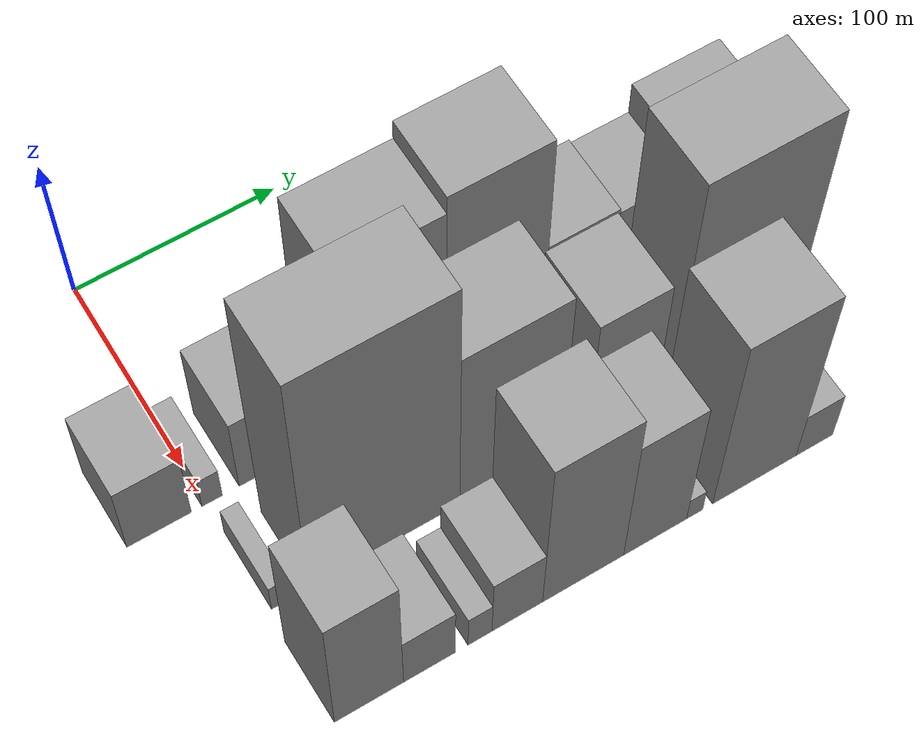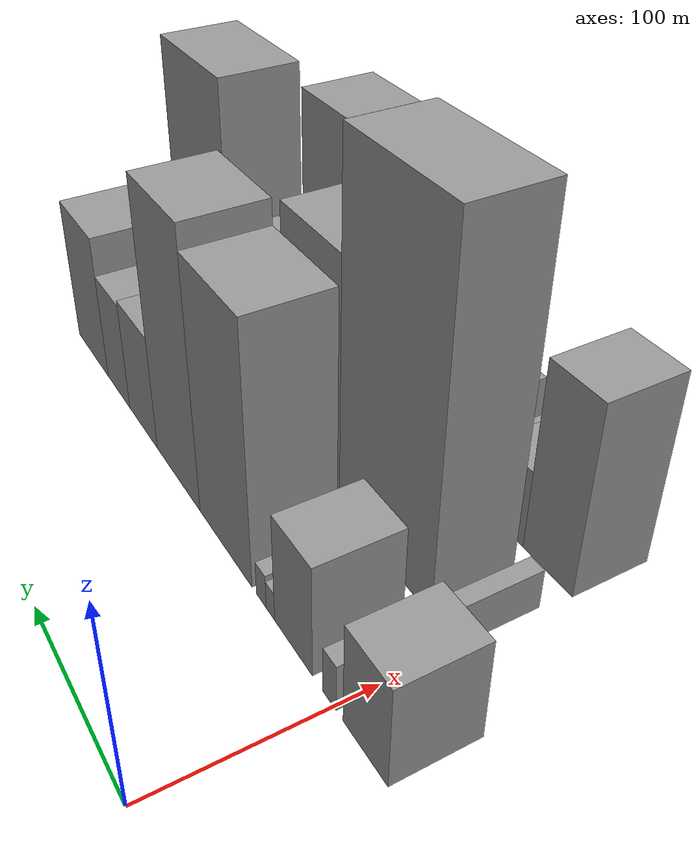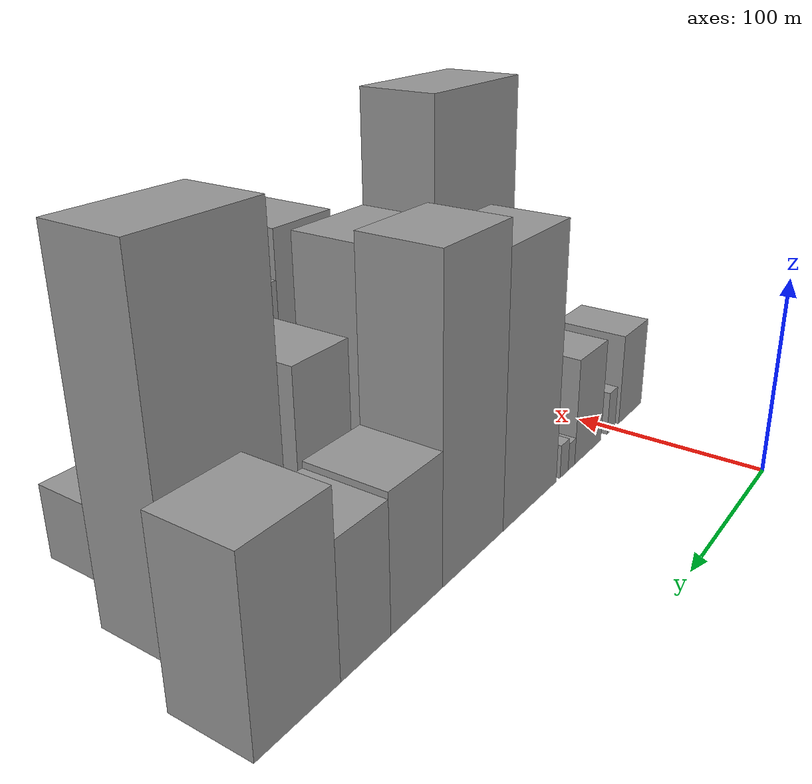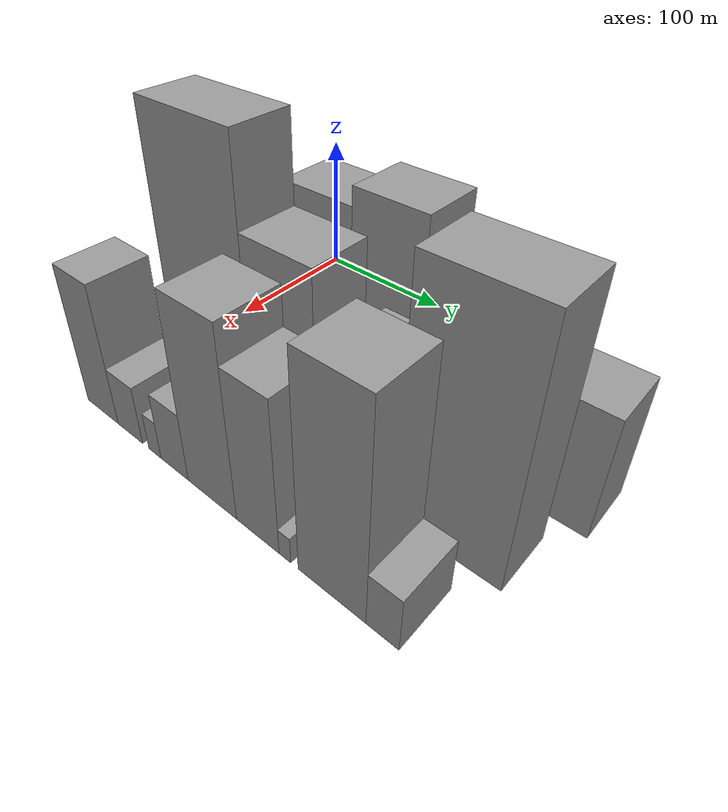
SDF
<sdf version="1.6">
 <world name="default">
  <model name="building_18">
   <static>1</static>
   <pose>100.0000 -22.1608 0 0.000000 0.000000 0.000000</pose>
   <link name="link">
    <pose>0 0 25.50 0 0 0</pose>
    <collision name="collision"><geometry><box><size>40.0000 30.3531 51.0000</size></box></geometry></collision>
    <visual name="visual">
     <cast_shadows>0</cast_shadows>
     <geometry><box><size>40.0000 30.3531 51.0000</size></box></geometry>
     <material>
      <script>
       <uri>model://grey_wall/materials/scripts</uri>
       <uri>model://grey_wall/materials/textures</uri>
       <name>vrc/grey_wall</name>
      </script>
     </material>
    </visual>
   </link>
  </model>
  <model name="building_19">
   <static>1</static>
   <pose>100.0000 2.8807 0 0.000000 0.000000 0.000000</pose>
   <link name="link">
    <pose>0 0 12.00 0 0 0</pose>
    <collision name="collision"><geometry><box><size>40.0000 9.7299 24.0000</size></box></geometry></collision>
    <visual name="visual">
     <cast_shadows>0</cast_shadows>
     <geometry><box><size>40.0000 9.7299 24.0000</size></box></geometry>
     <material>
      <script>
       <uri>model://grey_wall/materials/scripts</uri>
       <uri>model://grey_wall/materials/textures</uri>
       <name>vrc/grey_wall</name>
      </script>
     </material>
    </visual>
   </link>
  </model>
  <model name="building_20">
   <static>1</static>
   <pose>100.0000 31.1038 0 0.000000 0.000000 0.000000</pose>
   <link name="link">
    <pose>0 0 28.50 0 0 0</pose>
    <collision name="collision"><geometry><box><size>40.0000 30.7164 57.0000</size></box></geometry></collision>
    <visual name="visual">
     <cast_shadows>0</cast_shadows>
     <geometry><box><size>40.0000 30.7164 57.0000</size></box></geometry>
     <material>
      <script>
       <uri>model://grey_wall/materials/scripts</uri>
       <uri>model://grey_wall/materials/textures</uri>
       <name>vrc/grey_wall</name>
      </script>
     </material>
    </visual>
   </link>
  </model>
  <model name="building_21">
   <static>1</static>
   <pose>100.0000 50.1146 0 0.000000 0.000000 0.000000</pose>
   <link name="link">
    <pose>0 0 7.50 0 0 0</pose>
    <collision name="collision"><geometry><box><size>40.0000 7.3051 15.0000</size></box></geometry></collision>
    <visual name="visual">
     <cast_shadows>0</cast_shadows>
     <geometry><box><size>40.0000 7.3051 15.0000</size></box></geometry>
     <material>
      <script>
       <uri>model://grey_wall/materials/scripts</uri>
       <uri>model://grey_wall/materials/textures</uri>
       <name>vrc/grey_wall</name>
      </script>
     </material>
    </visual>
   </link>
  </model>
  <model name="building_22">
   <static>1</static>
   <pose>100.0000 58.1221 0 0.000000 0.000000 0.000000</pose>
   <link name="link">
    <pose>0 0 9.00 0 0 0</pose>
    <collision name="collision"><geometry><box><size>40.0000 8.7098 18.0000</size></box></geometry></collision>
    <visual name="visual">
     <cast_shadows>0</cast_shadows>
     <geometry><box><size>40.0000 8.7098 18.0000</size></box></geometry>
     <material>
      <script>
       <uri>model://grey_wall/materials/scripts</uri>
       <uri>model://grey_wall/materials/textures</uri>
       <name>vrc/grey_wall</name>
      </script>
     </material>
    </visual>
   </link>
  </model>
  <model name="building_23">
   <static>1</static>
   <pose>100.0000 92.1150 0 0.000000 0.000000 0.000000</pose>
   <link name="link">
    <pose>0 0 66.00 0 0 0</pose>
    <collision name="collision"><geometry><box><size>40.0000 51.2761 132.0000</size></box></geometry></collision>
    <visual name="visual">
     <cast_shadows>0</cast_shadows>
     <geometry><box><size>40.0000 51.2761 132.0000</size></box></geometry>
     <material>
      <script>
       <uri>model://grey_wall/materials/scripts</uri>
       <uri>model://grey_wall/materials/textures</uri>
       <name>vrc/grey_wall</name>
      </script>
     </material>
    </visual>
   </link>
  </model>
  <model name="building_24">
   <static>1</static>
   <pose>100.0000 142.2321 0 0.000000 0.000000 0.000000</pose>
   <link name="link">
    <pose>0 0 72.00 0 0 0</pose>
    <collision name="collision"><geometry><box><size>40.0000 48.9580 144.0000</size></box></geometry></collision>
    <visual name="visual">
     <cast_shadows>0</cast_shadows>
     <geometry><box><size>40.0000 48.9580 144.0000</size></box></geometry>
     <material>
      <script>
       <uri>model://grey_wall/materials/scripts</uri>
       <uri>model://grey_wall/materials/textures</uri>
       <name>vrc/grey_wall</name>
      </script>
     </material>
    </visual>
   </link>
  </model>
  <model name="building_25">
   <static>1</static>
   <pose>100.0000 184.4532 0 0.000000 0.000000 0.000000</pose>
   <link name="link">
    <pose>0 0 31.50 0 0 0</pose>
    <collision name="collision"><geometry><box><size>40.0000 35.4842 63.0000</size></box></geometry></collision>
    <visual name="visual">
     <cast_shadows>0</cast_shadows>
     <geometry><box><size>40.0000 35.4842 63.0000</size></box></geometry>
     <material>
      <script>
       <uri>model://grey_wall/materials/scripts</uri>
       <uri>model://grey_wall/materials/textures</uri>
       <name>vrc/grey_wall</name>
      </script>
     </material>
    </visual>
   </link>
  </model>
  <model name="building_26">
   <static>1</static>
   <pose>100.0000 217.3462 0 0.000000 0.000000 0.000000</pose>
   <link name="link">
    <pose>0 0 30.00 0 0 0</pose>
    <collision name="collision"><geometry><box><size>40.0000 30.3018 60.0000</size></box></geometry></collision>
    <visual name="visual">
     <cast_shadows>0</cast_shadows>
     <geometry><box><size>40.0000 30.3018 60.0000</size></box></geometry>
     <material>
      <script>
       <uri>model://grey_wall/materials/scripts</uri>
       <uri>model://grey_wall/materials/textures</uri>
       <name>vrc/grey_wall</name>
      </script>
     </material>
    </visual>
   </link>
  </model>
  <model name="building_27">
   <static>1</static>
   <pose>100.0000 254.6046 0 0.000000 0.000000 0.000000</pose>
   <link name="link">
    <pose>0 0 40.50 0 0 0</pose>
    <collision name="collision"><geometry><box><size>40.0000 44.2150 81.0000</size></box></geometry></collision>
    <visual name="visual">
     <cast_shadows>0</cast_shadows>
     <geometry><box><size>40.0000 44.2150 81.0000</size></box></geometry>
     <material>
      <script>
       <uri>model://grey_wall/materials/scripts</uri>
       <uri>model://grey_wall/materials/textures</uri>
       <name>vrc/grey_wall</name>
      </script>
     </material>
    </visual>
   </link>
  </model>
  <model name="building_53">
   <static>1</static>
   <pose>155.0000 4.5576 0 0.000000 0.000000 0.000000</pose>
   <link name="link">
    <pose>0 0 10.50 0 0 0</pose>
    <collision name="collision"><geometry><box><size>40.0000 8.5847 21.0000</size></box></geometry></collision>
    <visual name="visual">
     <cast_shadows>0</cast_shadows>
     <geometry><box><size>40.0000 8.5847 21.0000</size></box></geometry>
     <material>
      <script>
       <uri>model://grey_wall/materials/scripts</uri>
       <uri>model://grey_wall/materials/textures</uri>
       <name>vrc/grey_wall</name>
      </script>
     </material>
    </visual>
   </link>
  </model>
  <model name="building_54">
   <static>1</static>
   <pose>155.0000 54.0889 0 0.000000 0.000000 0.000000</pose>
   <link name="link">
    <pose>0 0 91.50 0 0 0</pose>
    <collision name="collision"><geometry><box><size>40.0000 72.4778 183.0000</size></box></geometry></collision>
    <visual name="visual">
     <cast_shadows>0</cast_shadows>
     <geometry><box><size>40.0000 72.4778 183.0000</size></box></geometry>
     <material>
      <script>
       <uri>model://grey_wall/materials/scripts</uri>
       <uri>model://grey_wall/materials/textures</uri>
       <name>vrc/grey_wall</name>
      </script>
     </material>
    </visual>
   </link>
  </model>
  <model name="building_55">
   <static>1</static>
   <pose>155.0000 115.5524 0 0.000000 0.000000 0.000000</pose>
   <link name="link">
    <pose>0 0 64.50 0 0 0</pose>
    <collision name="collision"><geometry><box><size>40.0000 50.4492 129.0000</size></box></geometry></collision>
    <visual name="visual">
     <cast_shadows>0</cast_shadows>
     <geometry><box><size>40.0000 50.4492 129.0000</size></box></geometry>
     <material>
      <script>
       <uri>model://grey_wall/materials/scripts</uri>
       <uri>model://grey_wall/materials/textures</uri>
       <name>vrc/grey_wall</name>
      </script>
     </material>
    </visual>
   </link>
  </model>
  <model name="building_56">
   <static>1</static>
   <pose>155.0000 147.4240 0 0.000000 0.000000 0.000000</pose>
   <link name="link">
    <pose>0 0 13.50 0 0 0</pose>
    <collision name="collision"><geometry><box><size>40.0000 13.2939 27.0000</size></box></geometry></collision>
    <visual name="visual">
     <cast_shadows>0</cast_shadows>
     <geometry><box><size>40.0000 13.2939 27.0000</size></box></geometry>
     <material>
      <script>
       <uri>model://grey_wall/materials/scripts</uri>
       <uri>model://grey_wall/materials/textures</uri>
       <name>vrc/grey_wall</name>
      </script>
     </material>
    </visual>
   </link>
  </model>
  <model name="building_57">
   <static>1</static>
   <pose>155.0000 171.3424 0 0.000000 0.000000 0.000000</pose>
   <link name="link">
    <pose>0 0 46.50 0 0 0</pose>
    <collision name="collision"><geometry><box><size>40.0000 34.5428 93.0000</size></box></geometry></collision>
    <visual name="visual">
     <cast_shadows>0</cast_shadows>
     <geometry><box><size>40.0000 34.5428 93.0000</size></box></geometry>
     <material>
      <script>
       <uri>model://grey_wall/materials/scripts</uri>
       <uri>model://grey_wall/materials/textures</uri>
       <name>vrc/grey_wall</name>
      </script>
     </material>
    </visual>
   </link>
  </model>
  <model name="building_58">
   <static>1</static>
   <pose>155.0000 228.3046 0 0.000000 0.000000 0.000000</pose>
   <link name="link">
    <pose>0 0 81.00 0 0 0</pose>
    <collision name="collision"><geometry><box><size>40.0000 63.3817 162.0000</size></box></geometry></collision>
    <visual name="visual">
     <cast_shadows>0</cast_shadows>
     <geometry><box><size>40.0000 63.3817 162.0000</size></box></geometry>
     <material>
      <script>
       <uri>model://grey_wall/materials/scripts</uri>
       <uri>model://grey_wall/materials/textures</uri>
       <name>vrc/grey_wall</name>
      </script>
     </material>
    </visual>
   </link>
  </model>
  <model name="building_83">
   <static>1</static>
   <pose>210.0000 13.9930 0 0.000000 0.000000 0.000000</pose>
   <link name="link">
    <pose>0 0 49.50 0 0 0</pose>
    <collision name="collision"><geometry><box><size>40.0000 32.1317 99.0000</size></box></geometry></collision>
    <visual name="visual">
     <cast_shadows>0</cast_shadows>
     <geometry><box><size>40.0000 32.1317 99.0000</size></box></geometry>
     <material>
      <script>
       <uri>model://grey_wall/materials/scripts</uri>
       <uri>model://grey_wall/materials/textures</uri>
       <name>vrc/grey_wall</name>
      </script>
     </material>
    </visual>
   </link>
  </model>
  <model name="building_84">
   <static>1</static>
   <pose>210.0000 42.2675 0 0.000000 0.000000 0.000000</pose>
   <link name="link">
    <pose>0 0 21.00 0 0 0</pose>
    <collision name="collision"><geometry><box><size>40.0000 24.4173 42.0000</size></box></geometry></collision>
    <visual name="visual">
     <cast_shadows>0</cast_shadows>
     <geometry><box><size>40.0000 24.4173 42.0000</size></box></geometry>
     <material>
      <script>
       <uri>model://grey_wall/materials/scripts</uri>
       <uri>model://grey_wall/materials/textures</uri>
       <name>vrc/grey_wall</name>
      </script>
     </material>
    </visual>
   </link>
  </model>
  <model name="building_85">
   <static>1</static>
   <pose>210.0000 66.1847 0 0.000000 0.000000 0.000000</pose>
   <link name="link">
    <pose>0 0 13.50 0 0 0</pose>
    <collision name="collision"><geometry><box><size>40.0000 11.4173 27.0000</size></box></geometry></collision>
    <visual name="visual">
     <cast_shadows>0</cast_shadows>
     <geometry><box><size>40.0000 11.4173 27.0000</size></box></geometry>
     <material>
      <script>
       <uri>model://grey_wall/materials/scripts</uri>
       <uri>model://grey_wall/materials/textures</uri>
       <name>vrc/grey_wall</name>
      </script>
     </material>
    </visual>
   </link>
  </model>
  <model name="building_86">
   <static>1</static>
   <pose>210.0000 84.0470 0 0.000000 0.000000 0.000000</pose>
   <link name="link">
    <pose>0 0 24.00 0 0 0</pose>
    <collision name="collision"><geometry><box><size>40.0000 24.3071 48.0000</size></box></geometry></collision>
    <visual name="visual">
     <cast_shadows>0</cast_shadows>
     <geometry><box><size>40.0000 24.3071 48.0000</size></box></geometry>
     <material>
      <script>
       <uri>model://grey_wall/materials/scripts</uri>
       <uri>model://grey_wall/materials/textures</uri>
       <name>vrc/grey_wall</name>
      </script>
     </material>
    </visual>
   </link>
  </model>
  <model name="building_87">
   <static>1</static>
   <pose>210.0000 116.0348 0 0.000000 0.000000 0.000000</pose>
   <link name="link">
    <pose>0 0 63.00 0 0 0</pose>
    <collision name="collision"><geometry><box><size>40.0000 39.6685 126.0000</size></box></geometry></collision>
    <visual name="visual">
     <cast_shadows>0</cast_shadows>
     <geometry><box><size>40.0000 39.6685 126.0000</size></box></geometry>
     <material>
      <script>
       <uri>model://grey_wall/materials/scripts</uri>
       <uri>model://grey_wall/materials/textures</uri>
       <name>vrc/grey_wall</name>
      </script>
     </material>
    </visual>
   </link>
  </model>
  <model name="building_88">
   <static>1</static>
   <pose>210.0000 151.5116 0 0.000000 0.000000 0.000000</pose>
   <link name="link">
    <pose>0 0 51.00 0 0 0</pose>
    <collision name="collision"><geometry><box><size>40.0000 31.2851 102.0000</size></box></geometry></collision>
    <visual name="visual">
     <cast_shadows>0</cast_shadows>
     <geometry><box><size>40.0000 31.2851 102.0000</size></box></geometry>
     <material>
      <script>
       <uri>model://grey_wall/materials/scripts</uri>
       <uri>model://grey_wall/materials/textures</uri>
       <name>vrc/grey_wall</name>
      </script>
     </material>
    </visual>
   </link>
  </model>
  <model name="building_89">
   <static>1</static>
   <pose>210.0000 171.2355 0 0.000000 0.000000 0.000000</pose>
   <link name="link">
    <pose>0 0 9.00 0 0 0</pose>
    <collision name="collision"><geometry><box><size>40.0000 8.1627 18.0000</size></box></geometry></collision>
    <visual name="visual">
     <cast_shadows>0</cast_shadows>
     <geometry><box><size>40.0000 8.1627 18.0000</size></box></geometry>
     <material>
      <script>
       <uri>model://grey_wall/materials/scripts</uri>
       <uri>model://grey_wall/materials/textures</uri>
       <name>vrc/grey_wall</name>
      </script>
     </material>
    </visual>
   </link>
  </model>
  <model name="building_90">
   <static>1</static>
   <pose>210.0000 201.6171 0 0.000000 0.000000 0.000000</pose>
   <link name="link">
    <pose>0 0 69.00 0 0 0</pose>
    <collision name="collision"><geometry><box><size>40.0000 42.6003 138.0000</size></box></geometry></collision>
    <visual name="visual">
     <cast_shadows>0</cast_shadows>
     <geometry><box><size>40.0000 42.6003 138.0000</size></box></geometry>
     <material>
      <script>
       <uri>model://grey_wall/materials/scripts</uri>
       <uri>model://grey_wall/materials/textures</uri>
       <name>vrc/grey_wall</name>
      </script>
     </material>
    </visual>
   </link>
  </model>
  <model name="building_91">
   <static>1</static>
   <pose>210.0000 232.3833 0 0.000000 0.000000 0.000000</pose>
   <link name="link">
    <pose>0 0 18.00 0 0 0</pose>
    <collision name="collision"><geometry><box><size>40.0000 18.9323 36.0000</size></box></geometry></collision>
    <visual name="visual">
     <cast_shadows>0</cast_shadows>
     <geometry><box><size>40.0000 18.9323 36.0000</size></box></geometry>
     <material>
      <script>
       <uri>model://grey_wall/materials/scripts</uri>
       <uri>model://grey_wall/materials/textures</uri>
       <name>vrc/grey_wall</name>
      </script>
     </material>
    </visual>
   </link>
  </model>
 </world>
</sdf>
